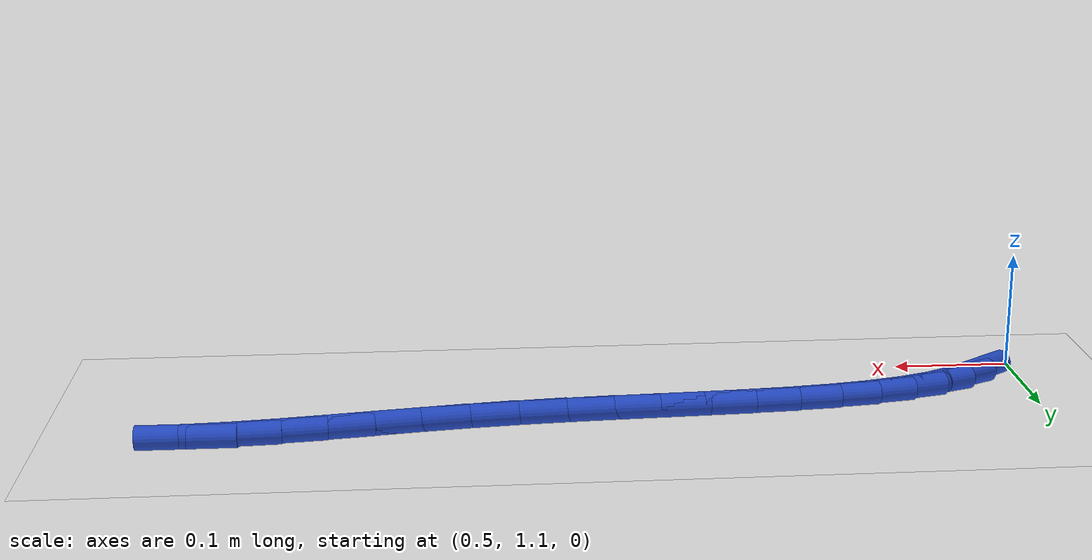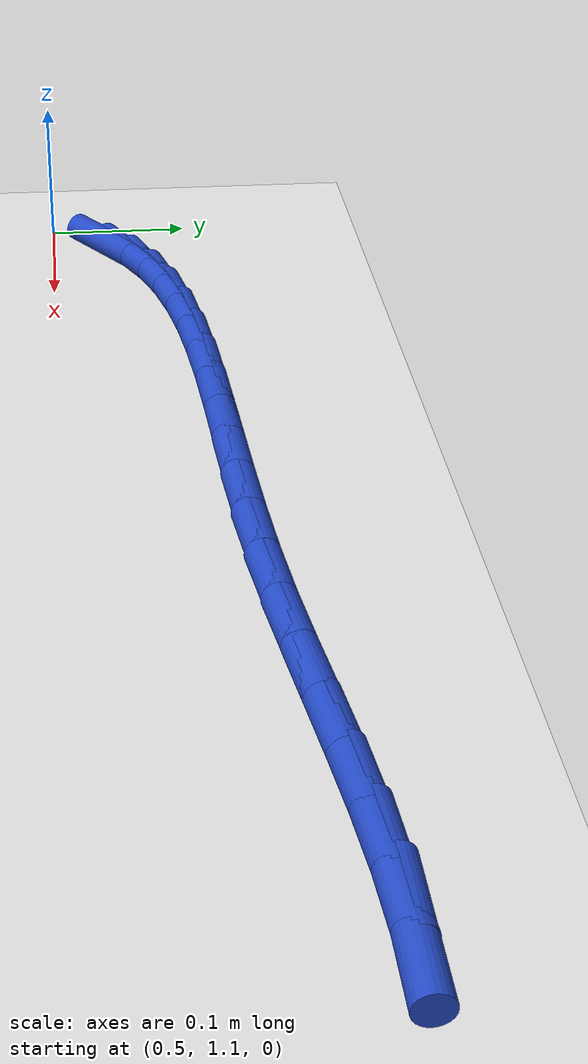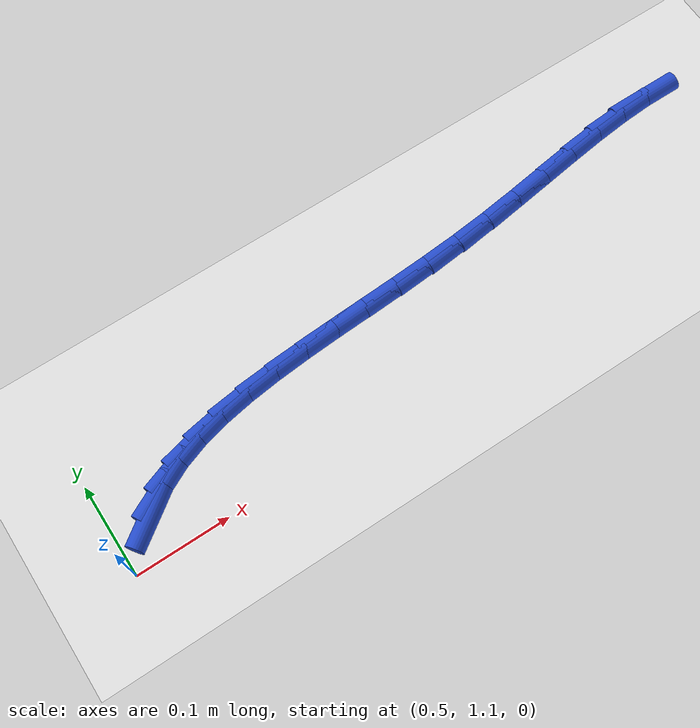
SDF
<sdf version="1.6">
 <world name="default">
  <model name="ground_plane">
   <static>1</static>
   <link name="link">
    <collision name="collision">
     <geometry><plane><normal>0 0 1</normal><size>100 100</size></plane></geometry>
     <surface><friction><ode><mu>100</mu><mu2>50</mu2></ode></friction></surface>
    </collision>
    <visual name="visual">
     <cast_shadows>0</cast_shadows>
     <geometry><plane><normal>0 0 1</normal><size>100 100</size></plane></geometry>
     <material>
      <script><uri>file://media/materials/scripts/gazebo.material</uri><name>Gazebo/WhiteGlow</name></script>
     </material>
    </visual>
   </link>
  </model>
  <model name="line">
   <link name="link_41">
    <pose>0.5427356243029462 1.1425852509446088 0.01 0 1.57 0.6307433806824019</pose>
    <collision name="collision">
     <geometry><cylinder><radius>0.01</radius><length>0.08</length></cylinder></geometry>
    </collision>
    <visual name="visual">
     <material>
      <script><name>Gazebo/Blue</name><uri>file://media/materials/scripts/gazebo.material</uri></script>
     </material>
     <geometry><cylinder><radius>0.01</radius><length>0.08</length></cylinder></geometry>
    </visual>
   </link>
   <link name="link_42">
    <pose>0.5634642224468274 1.1577223908898824 0.01 0 1.57 0.471466870205109</pose>
    <collision name="collision">
     <geometry><cylinder><radius>0.01</radius><length>0.08</length></cylinder></geometry>
    </collision>
    <visual name="visual">
     <material>
      <script><name>Gazebo/Blue</name><uri>file://media/materials/scripts/gazebo.material</uri></script>
     </material>
     <geometry><cylinder><radius>0.01</radius><length>0.08</length></cylinder></geometry>
    </visual>
   </link>
   <link name="link_43">
    <pose>0.5874104241342258 1.1699304671970359 0.01 0 1.57 0.3446245084557042</pose>
    <collision name="collision">
     <geometry><cylinder><radius>0.01</radius><length>0.08</length></cylinder></geometry>
    </collision>
    <visual name="visual">
     <material>
      <script><name>Gazebo/Blue</name><uri>file://media/materials/scripts/gazebo.material</uri></script>
     </material>
     <geometry><cylinder><radius>0.01</radius><length>0.08</length></cylinder></geometry>
    </visual>
   </link>
   <link name="link_44">
    <pose>0.614276260534935 1.1795739219110366 0.01 0 1.57 0.24725628020326823</pose>
    <collision name="collision">
     <geometry><cylinder><radius>0.01</radius><length>0.08</length></cylinder></geometry>
    </collision>
    <visual name="visual">
     <material>
      <script><name>Gazebo/Blue</name><uri>file://media/materials/scripts/gazebo.material</uri></script>
     </material>
     <geometry><cylinder><radius>0.01</radius><length>0.08</length></cylinder></geometry>
    </visual>
   </link>
   <link name="link_45">
    <pose>0.6437637628187494 1.1870171970768506 0.01 0 1.57 0.1744830754683009</pose>
    <collision name="collision">
     <geometry><cylinder><radius>0.01</radius><length>0.08</length></cylinder></geometry>
    </collision>
    <visual name="visual">
     <material>
      <script><name>Gazebo/Blue</name><uri>file://media/materials/scripts/gazebo.material</uri></script>
     </material>
     <geometry><cylinder><radius>0.01</radius><length>0.08</length></cylinder></geometry>
    </visual>
   </link>
   <link name="link_46">
    <pose>0.6755749621554622 1.1926247347394436 0.01 0 1.57 0.12163701046163239</pose>
    <collision name="collision">
     <geometry><cylinder><radius>0.01</radius><length>0.08</length></cylinder></geometry>
    </collision>
    <visual name="visual">
     <material>
      <script><name>Gazebo/Blue</name><uri>file://media/materials/scripts/gazebo.material</uri></script>
     </material>
     <geometry><cylinder><radius>0.01</radius><length>0.08</length></cylinder></geometry>
    </visual>
   </link>
   <link name="link_47">
    <pose>0.7094118897148673 1.1967609769437817 0.01 0 1.57 0.08497456677011156</pose>
    <collision name="collision">
     <geometry><cylinder><radius>0.01</radius><length>0.08</length></cylinder></geometry>
    </collision>
    <visual name="visual">
     <material>
      <script><name>Gazebo/Blue</name><uri>file://media/materials/scripts/gazebo.material</uri></script>
     </material>
     <geometry><cylinder><radius>0.01</radius><length>0.08</length></cylinder></geometry>
    </visual>
   </link>
   <link name="link_48">
    <pose>0.744976576666759 1.1997903657348314 0.01 0 1.57 0.0617408570744163</pose>
    <collision name="collision">
     <geometry><cylinder><radius>0.01</radius><length>0.08</length></cylinder></geometry>
    </collision>
    <visual name="visual">
     <material>
      <script><name>Gazebo/Blue</name><uri>file://media/materials/scripts/gazebo.material</uri></script>
     </material>
     <geometry><cylinder><radius>0.01</radius><length>0.08</length></cylinder></geometry>
    </visual>
   </link>
   <link name="link_49">
    <pose>0.7819710541809302 1.202077343157559 0.01 0 1.57 0.05002885657419668</pose>
    <collision name="collision">
     <geometry><cylinder><radius>0.01</radius><length>0.08</length></cylinder></geometry>
    </collision>
    <visual name="visual">
     <material>
      <script><name>Gazebo/Blue</name><uri>file://media/materials/scripts/gazebo.material</uri></script>
     </material>
     <geometry><cylinder><radius>0.01</radius><length>0.08</length></cylinder></geometry>
    </visual>
   </link>
   <link name="link_50">
    <pose>0.8200973534271754 1.2039863512569309 0.01 0 1.57 0.04861345002937244</pose>
    <collision name="collision">
     <geometry><cylinder><radius>0.01</radius><length>0.08</length></cylinder></geometry>
    </collision>
    <visual name="visual">
     <material>
      <script><name>Gazebo/Blue</name><uri>file://media/materials/scripts/gazebo.material</uri></script>
     </material>
     <geometry><cylinder><radius>0.01</radius><length>0.08</length></cylinder></geometry>
    </visual>
   </link>
   <link name="link_51">
    <pose>0.8590575055752883 1.2058818320779132 0.01 0 1.57 0.05681527006630187</pose>
    <collision name="collision">
     <geometry><cylinder><radius>0.01</radius><length>0.08</length></cylinder></geometry>
    </collision>
    <visual name="visual">
     <material>
      <script><name>Gazebo/Blue</name><uri>file://media/materials/scripts/gazebo.material</uri></script>
     </material>
     <geometry><cylinder><radius>0.01</radius><length>0.08</length></cylinder></geometry>
    </visual>
   </link>
   <link name="link_52">
    <pose>0.8985535417950622 1.2081282276654715 0.01 0 1.57 0.07440199604239602</pose>
    <collision name="collision">
     <geometry><cylinder><radius>0.01</radius><length>0.08</length></cylinder></geometry>
    </collision>
    <visual name="visual">
     <material>
      <script><name>Gazebo/Blue</name><uri>file://media/materials/scripts/gazebo.material</uri></script>
     </material>
     <geometry><cylinder><radius>0.01</radius><length>0.08</length></cylinder></geometry>
    </visual>
   </link>
   <link name="link_53">
    <pose>0.938287493256291 1.211089980064572 0.01 0 1.57 0.10117800617957905</pose>
    <collision name="collision">
     <geometry><cylinder><radius>0.01</radius><length>0.08</length></cylinder></geometry>
    </collision>
    <visual name="visual">
     <material>
      <script><name>Gazebo/Blue</name><uri>file://media/materials/scripts/gazebo.material</uri></script>
     </material>
     <geometry><cylinder><radius>0.01</radius><length>0.08</length></cylinder></geometry>
    </visual>
   </link>
   <link name="link_54">
    <pose>0.9779623935951675 1.2151179615664336 0.01 0 1.57 0.12746172641254064</pose>
    <collision name="collision">
     <geometry><cylinder><radius>0.01</radius><length>0.08</length></cylinder></geometry>
    </collision>
    <visual name="visual">
     <material>
      <script><name>Gazebo/Blue</name><uri>file://media/materials/scripts/gazebo.material</uri></script>
     </material>
     <geometry><cylinder><radius>0.01</radius><length>0.08</length></cylinder></geometry>
    </visual>
   </link>
   <link name="link_55">
    <pose>1.0173109966244924 1.220160741224134 0.01 0 1.57 0.14202264424913053</pose>
    <collision name="collision">
     <geometry><cylinder><radius>0.01</radius><length>0.08</length></cylinder></geometry>
    </collision>
    <visual name="visual">
     <material>
      <script><name>Gazebo/Blue</name><uri>file://media/materials/scripts/gazebo.material</uri></script>
     </material>
     <geometry><cylinder><radius>0.01</radius><length>0.08</length></cylinder></geometry>
    </visual>
   </link>
   <link name="link_56">
    <pose>1.0561000302153936 1.225707002745677 0.01 0 1.57 0.14408815502588676</pose>
    <collision name="collision">
     <geometry><cylinder><radius>0.01</radius><length>0.08</length></cylinder></geometry>
    </collision>
    <visual name="visual">
     <material>
      <script><name>Gazebo/Blue</name><uri>file://media/materials/scripts/gazebo.material</uri></script>
     </material>
     <geometry><cylinder><radius>0.01</radius><length>0.08</length></cylinder></geometry>
    </visual>
   </link>
   <link name="link_57">
    <pose>1.0940980802571028 1.2312202790228168 0.01 0 1.57 0.13291653833087252</pose>
    <collision name="collision">
     <geometry><cylinder><radius>0.01</radius><length>0.08</length></cylinder></geometry>
    </collision>
    <visual name="visual">
     <material>
      <script><name>Gazebo/Blue</name><uri>file://media/materials/scripts/gazebo.material</uri></script>
     </material>
     <geometry><cylinder><radius>0.01</radius><length>0.08</length></cylinder></geometry>
    </visual>
   </link>
   <link name="link_58">
    <pose>1.1310737326388538 1.2361641029473067 0.01 0 1.57 0.10702804761849119</pose>
    <collision name="collision">
     <geometry><cylinder><radius>0.01</radius><length>0.08</length></cylinder></geometry>
    </collision>
    <visual name="visual">
     <material>
      <script><name>Gazebo/Blue</name><uri>file://media/materials/scripts/gazebo.material</uri></script>
     </material>
     <geometry><cylinder><radius>0.01</radius><length>0.08</length></cylinder></geometry>
    </visual>
   </link>
   <link name="link_59">
    <pose>1.1667955732498794 1.2400020074109002 0.01 0 1.57 0.06404008459849984</pose>
    <collision name="collision">
     <geometry><cylinder><radius>0.01</radius><length>0.08</length></cylinder></geometry>
    </collision>
    <visual name="visual">
     <material>
      <script><name>Gazebo/Blue</name><uri>file://media/materials/scripts/gazebo.material</uri></script>
     </material>
     <geometry><cylinder><radius>0.01</radius><length>0.08</length></cylinder></geometry>
    </visual>
   </link>
   <link name="link_60">
    <pose>1.201032187979413 1.2421975253053505 0.01 0 1.57 0.0005124301521370102</pose>
    <collision name="collision">
     <geometry><cylinder><radius>0.01</radius><length>0.08</length></cylinder></geometry>
    </collision>
    <visual name="visual">
     <material>
      <script><name>Gazebo/Blue</name><uri>file://media/materials/scripts/gazebo.material</uri></script>
     </material>
     <geometry><cylinder><radius>0.01</radius><length>0.08</length></cylinder></geometry>
    </visual>
   </link>
  </model>
 </world>
</sdf>
